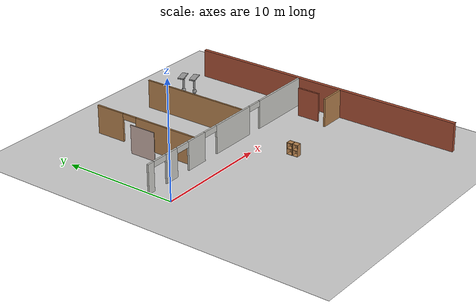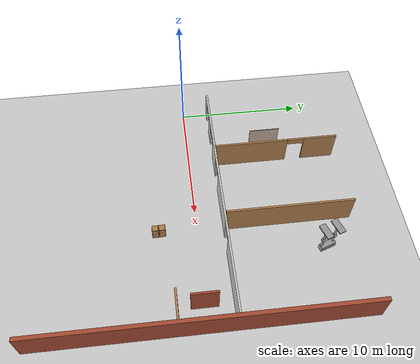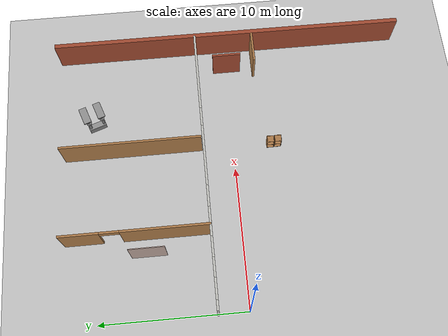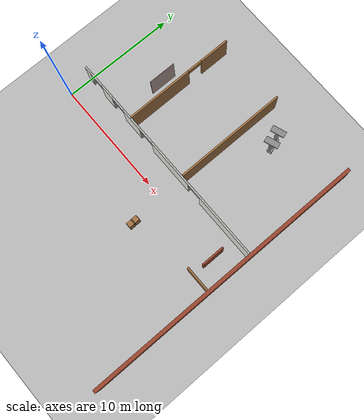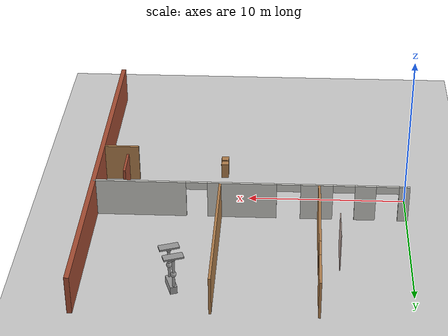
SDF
<sdf version="1.6">
 <world name="default">
  <model name="ground_plane">
   <static>1</static>
   <link name="link">
    <collision name="collision">
     <geometry><plane><normal>0 0 1</normal><size>100 100</size></plane></geometry>
     <surface><friction><ode><mu>100</mu><mu2>50</mu2></ode></friction></surface>
    </collision>
    <visual name="visual">
     <cast_shadows>0</cast_shadows>
     <geometry><plane><normal>0 0 1</normal><size>100 100</size></plane></geometry>
     <material>
      <script><uri>file://media/materials/scripts/gazebo.material</uri><name>Gazebo/Grey</name></script>
     </material>
    </visual>
   </link>
  </model>
  <model name="Building">
   <pose>-1.26631 -0.299272 0 0 -0 0</pose>
   <link name="Wall_19">
    <collision name="Wall_19_Collision">
     <geometry><box><size>24.9915 0.3 2.5</size></box></geometry>
     <pose>0 0 1.25 0 -0 0</pose>
    </collision>
    <visual name="Wall_19_Visual">
     <pose>0 0 1.25 0 -0 0</pose>
     <geometry><box><size>24.9915 0.3 2.5</size></box></geometry>
     <material>
      <script><uri>file://media/materials/scripts/gazebo.material</uri><name>Gazebo/Bricks</name></script>
      <ambient>1 1 1 1</ambient>
     </material>
     <meta><layer>0</layer></meta>
    </visual>
    <pose>20.9406 0.012499 0 0 0 -1.57201</pose>
   </link>
   <link name="Wall_77">
    <pose>11.0476 2.39664 0 0 -0 0</pose>
    <visual name="Wall_77_Visual_0">
     <pose>-9.53901 0 1.25 0 -0 0</pose>
     <geometry><box><size>0.671981 0.15 2.5</size></box></geometry>
     <material>
      <script><uri>file://media/materials/scripts/gazebo.material</uri><name>Gazebo/CeilingTiled</name></script>
      <ambient>0.921569 0.807843 0.615686 1</ambient>
     </material>
     <meta><layer>0</layer></meta>
    </visual>
    <collision name="Wall_77_Collision_0">
     <geometry><box><size>0.671981 0.15 2.5</size></box></geometry>
     <pose>-9.53901 0 1.25 0 -0 0</pose>
    </collision>
    <visual name="Wall_77_Visual_1">
     <pose>-7.12805 0 1.25 0 -0 0</pose>
     <geometry><box><size>1.31821 0.15 2.5</size></box></geometry>
     <material>
      <script><uri>file://media/materials/scripts/gazebo.material</uri><name>Gazebo/CeilingTiled</name></script>
      <ambient>0.921569 0.807843 0.615686 1</ambient>
     </material>
     <meta><layer>0</layer></meta>
    </visual>
    <collision name="Wall_77_Collision_1">
     <geometry><box><size>1.31821 0.15 2.5</size></box></geometry>
     <pose>-7.12805 0 1.25 0 -0 0</pose>
    </collision>
    <visual name="Wall_77_Visual_2">
     <pose>-4.09575 0 1.25 0 -0 0</pose>
     <geometry><box><size>2.01783 0.15 2.5</size></box></geometry>
     <material>
      <script><uri>file://media/materials/scripts/gazebo.material</uri><name>Gazebo/CeilingTiled</name></script>
      <ambient>0.921569 0.807843 0.615686 1</ambient>
     </material>
     <meta><layer>0</layer></meta>
    </visual>
    <collision name="Wall_77_Collision_2">
     <geometry><box><size>2.01783 0.15 2.5</size></box></geometry>
     <pose>-4.09575 0 1.25 0 -0 0</pose>
    </collision>
    <visual name="Wall_77_Visual_3">
     <pose>0.576423 0 1.25 0 -0 0</pose>
     <geometry><box><size>4.33726 0.15 2.5</size></box></geometry>
     <material>
      <script><uri>file://media/materials/scripts/gazebo.material</uri><name>Gazebo/CeilingTiled</name></script>
      <ambient>0.921569 0.807843 0.615686 1</ambient>
     </material>
     <meta><layer>0</layer></meta>
    </visual>
    <collision name="Wall_77_Collision_3">
     <geometry><box><size>4.33726 0.15 2.5</size></box></geometry>
     <pose>0.576423 0 1.25 0 -0 0</pose>
    </collision>
    <visual name="Wall_77_Visual_4">
     <pose>6.97729 0 1.25 0 -0 0</pose>
     <geometry><box><size>5.79542 0.15 2.5</size></box></geometry>
     <material>
      <script><uri>file://media/materials/scripts/gazebo.material</uri><name>Gazebo/CeilingTiled</name></script>
      <ambient>0.921569 0.807843 0.615686 1</ambient>
     </material>
     <meta><layer>0</layer></meta>
    </visual>
    <collision name="Wall_77_Collision_4">
     <geometry><box><size>5.79542 0.15 2.5</size></box></geometry>
     <pose>6.97729 0 1.25 0 -0 0</pose>
    </collision>
    <visual name="Wall_77_Visual_5">
     <pose>-8.49509 0 2.25 0 -0 0</pose>
     <geometry><box><size>1.41586 0.15 0.5</size></box></geometry>
     <material>
      <script><uri>file://media/materials/scripts/gazebo.material</uri><name>Gazebo/CeilingTiled</name></script>
      <ambient>0.921569 0.807843 0.615686 1</ambient>
     </material>
     <meta><layer>0</layer></meta>
    </visual>
    <collision name="Wall_77_Collision_5">
     <geometry><box><size>1.41586 0.15 0.5</size></box></geometry>
     <pose>-8.49509 0 2.25 0 -0 0</pose>
    </collision>
    <visual name="Wall_77_Visual_6">
     <pose>-5.7868 0 2.25 0 -0 0</pose>
     <geometry><box><size>1.36428 0.15 0.5</size></box></geometry>
     <material>
      <script><uri>file://media/materials/scripts/gazebo.material</uri><name>Gazebo/CeilingTiled</name></script>
      <ambient>0.921569 0.807843 0.615686 1</ambient>
     </material>
     <meta><layer>0</layer></meta>
    </visual>
    <collision name="Wall_77_Collision_6">
     <geometry><box><size>1.36428 0.15 0.5</size></box></geometry>
     <pose>-5.7868 0 2.25 0 -0 0</pose>
    </collision>
    <visual name="Wall_77_Visual_7">
     <pose>-2.33952 0 2.25 0 -0 0</pose>
     <geometry><box><size>1.49462 0.15 0.5</size></box></geometry>
     <material>
      <script><uri>file://media/materials/scripts/gazebo.material</uri><name>Gazebo/CeilingTiled</name></script>
      <ambient>0.921569 0.807843 0.615686 1</ambient>
     </material>
     <meta><layer>0</layer></meta>
    </visual>
    <collision name="Wall_77_Collision_7">
     <geometry><box><size>1.49462 0.15 0.5</size></box></geometry>
     <pose>-2.33952 0 2.25 0 -0 0</pose>
    </collision>
    <visual name="Wall_77_Visual_8">
     <pose>3.41232 0 2.25 0 -0 0</pose>
     <geometry><box><size>1.33453 0.15 0.5</size></box></geometry>
     <material>
      <script><uri>file://media/materials/scripts/gazebo.material</uri><name>Gazebo/CeilingTiled</name></script>
      <ambient>0.921569 0.807843 0.615686 1</ambient>
     </material>
     <meta><layer>0</layer></meta>
    </visual>
    <collision name="Wall_77_Collision_8">
     <geometry><box><size>1.33453 0.15 0.5</size></box></geometry>
     <pose>3.41232 0 2.25 0 -0 0</pose>
    </collision>
   </link>
   <link name="Wall_80">
    <pose>6.79105 7.35843 0 0 0 -1.5708</pose>
    <visual name="Wall_80_Visual_0">
     <pose>-3.66248 0 1.25 0 -0 0</pose>
     <geometry><box><size>2.67504 0.15 2.5</size></box></geometry>
     <material>
      <script><uri>file://media/materials/scripts/gazebo.material</uri><name>Gazebo/Wood</name></script>
      <ambient>1 1 1 1</ambient>
     </material>
     <meta><layer>0</layer></meta>
    </visual>
    <collision name="Wall_80_Collision_0">
     <geometry><box><size>2.67504 0.15 2.5</size></box></geometry>
     <pose>-3.66248 0 1.25 0 -0 0</pose>
    </collision>
    <visual name="Wall_80_Visual_1">
     <pose>2.00479 0 1.25 0 -0 0</pose>
     <geometry><box><size>5.99042 0.15 2.5</size></box></geometry>
     <material>
      <script><uri>file://media/materials/scripts/gazebo.material</uri><name>Gazebo/Wood</name></script>
      <ambient>1 1 1 1</ambient>
     </material>
     <meta><layer>0</layer></meta>
    </visual>
    <collision name="Wall_80_Collision_1">
     <geometry><box><size>5.99042 0.15 2.5</size></box></geometry>
     <pose>2.00479 0 1.25 0 -0 0</pose>
    </collision>
    <visual name="Wall_80_Visual_2">
     <pose>-1.65769 0 2.25 0 -0 0</pose>
     <geometry><box><size>1.33453 0.15 0.5</size></box></geometry>
     <material>
      <script><uri>file://media/materials/scripts/gazebo.material</uri><name>Gazebo/Wood</name></script>
      <ambient>1 1 1 1</ambient>
     </material>
     <meta><layer>0</layer></meta>
    </visual>
    <collision name="Wall_80_Collision_2">
     <geometry><box><size>1.33453 0.15 0.5</size></box></geometry>
     <pose>-1.65769 0 2.25 0 -0 0</pose>
    </collision>
   </link>
   <link name="Wall_91">
    <collision name="Wall_91_Collision">
     <geometry><box><size>2.25 0.15 2.5</size></box></geometry>
     <pose>0 0 1.25 0 -0 0</pose>
    </collision>
    <visual name="Wall_91_Visual">
     <pose>0 0 1.25 0 -0 0</pose>
     <geometry><box><size>2.25 0.15 2.5</size></box></geometry>
     <material>
      <script><uri>file://media/materials/scripts/gazebo.material</uri><name>Gazebo/Wood</name></script>
      <ambient>1 1 1 1</ambient>
     </material>
     <meta><layer>0</layer></meta>
    </visual>
    <pose>19.6906 -1.7315 0 0 -0 0</pose>
   </link>
   <link name="Wall_93">
    <collision name="Wall_93_Collision">
     <geometry><box><size>2 0.15 2.5</size></box></geometry>
     <pose>0 0 1.25 0 -0 0</pose>
    </collision>
    <visual name="Wall_93_Visual">
     <pose>0 0 1.25 0 -0 0</pose>
     <geometry><box><size>2 0.15 2.5</size></box></geometry>
     <material>
      <script><uri>file://media/materials/scripts/gazebo.material</uri><name>Gazebo/Bricks</name></script>
      <ambient>1 1 1 1</ambient>
     </material>
     <meta><layer>0</layer></meta>
    </visual>
    <pose>19.1519 0.230697 0 0 0 -1.5708</pose>
   </link>
   <link name="Wall_95">
    <collision name="Wall_95_Collision">
     <geometry><box><size>9.75 0.15 2.5</size></box></geometry>
     <pose>0 0 1.25 0 -0 0</pose>
    </collision>
    <visual name="Wall_95_Visual">
     <pose>0 0 1.25 0 -0 0</pose>
     <geometry><box><size>9.75 0.15 2.5</size></box></geometry>
     <material>
      <script><uri>file://media/materials/scripts/gazebo.material</uri><name>Gazebo/Wood</name></script>
      <ambient>1 1 1 1</ambient>
     </material>
     <meta><layer>0</layer></meta>
    </visual>
    <pose>12.9865 7.39321 0 0 0 -1.5708</pose>
   </link>
   <link name="Wall_97">
    <collision name="Wall_97_Collision">
     <geometry><box><size>2.39986 0.05 2.5</size></box></geometry>
     <pose>0 0 1.25 0 -0 0</pose>
    </collision>
    <visual name="Wall_97_Visual">
     <pose>0 0 1.25 0 -0 0</pose>
     <geometry><box><size>2.39986 0.05 2.5</size></box></geometry>
     <material>
      <script><uri>file://media/materials/scripts/gazebo.material</uri><name>Gazebo/Grey</name></script>
      <ambient>0.760784 0.662745 0.627451 1</ambient>
     </material>
     <meta><layer>0</layer></meta>
    </visual>
    <pose>5.54862 6.64876 0 0 0 -1.5708</pose>
   </link>
   <static>1</static>
  </model>
  <model name="cabinet_clone_11">
   <static>1</static>
   <link name="cabinet_bottom_plate">
    <inertial>
     <pose>0 0 -1 0 -0 0</pose>
     <inertia><ixx>2.05</ixx><ixy>0</ixy><ixz>0</ixz><iyy>2.05</iyy><iyz>0</iyz><izz>2.05</izz></inertia>
     <mass>25</mass>
    </inertial>
    <collision name="cabinet_bottom_plate_geom">
     <pose>0 0 0.01 0 -0 0</pose>
     <geometry><box><size>0.45 0.45 0.02</size></box></geometry>
    </collision>
    <visual name="cabinet_bottom_plate_geom_visual">
     <pose>0 0 0.01 0 -0 0</pose>
     <geometry><box><size>0.45 0.45 0.02</size></box></geometry>
     <material>
      <script><uri>file://media/materials/scripts/gazebo.material</uri><name>Gazebo/Wood</name></script>
     </material>
    </visual>
    <collision name="cabinet_bottom_plate_geom_cabinet_back_plate">
     <pose>0.235 0 0.51 0 -0 0</pose>
     <geometry><box><size>0.02 0.45 1.02</size></box></geometry>
    </collision>
    <visual name="cabinet_bottom_plate_geom_cabinet_back_plate_visual">
     <pose>0.235 0 0.51 0 -0 0</pose>
     <geometry><box><size>0.02 0.45 1.02</size></box></geometry>
     <material>
      <script><uri>file://media/materials/scripts/gazebo.material</uri><name>Gazebo/Wood</name></script>
     </material>
    </visual>
    <collision name="cabinet_bottom_plate_geom_cabinet_left_plate">
     <pose>0 0.235 0.51 0 -0 0</pose>
     <geometry><box><size>0.45 0.02 1.02</size></box></geometry>
    </collision>
    <visual name="cabinet_bottom_plate_geom_cabinet_left_plate_visual">
     <pose>0 0.235 0.51 0 -0 0</pose>
     <geometry><box><size>0.45 0.02 1.02</size></box></geometry>
     <material>
      <script><uri>file://media/materials/scripts/gazebo.material</uri><name>Gazebo/Wood</name></script>
     </material>
    </visual>
    <collision name="cabinet_bottom_plate_geom_cabinet_middle_plate">
     <pose>0 0 0.51 0 -0 0</pose>
     <geometry><box><size>0.45 0.45 0.02</size></box></geometry>
    </collision>
    <visual name="cabinet_bottom_plate_geom_cabinet_middle_plate_visual">
     <pose>0 0 0.51 0 -0 0</pose>
     <geometry><box><size>0.45 0.45 0.02</size></box></geometry>
     <material>
      <script><uri>file://media/materials/scripts/gazebo.material</uri><name>Gazebo/Wood</name></script>
     </material>
    </visual>
    <collision name="cabinet_bottom_plate_geom_cabinet_right_plate">
     <pose>0 -0.235 0.51 0 -0 0</pose>
     <geometry><box><size>0.45 0.02 1.02</size></box></geometry>
    </collision>
    <visual name="cabinet_bottom_plate_geom_cabinet_right_plate_visual">
     <pose>0 -0.235 0.51 0 -0 0</pose>
     <geometry><box><size>0.45 0.02 1.02</size></box></geometry>
     <material>
      <script><uri>file://media/materials/scripts/gazebo.material</uri><name>Gazebo/Wood</name></script>
     </material>
    </visual>
    <collision name="cabinet_bottom_plate_geom_cabinet_top_plate">
     <pose>0 0 1.01 0 -0 0</pose>
     <geometry><box><size>0.45 0.45 0.02</size></box></geometry>
    </collision>
    <visual name="cabinet_bottom_plate_geom_cabinet_top_plate_visual">
     <pose>0 0 1.01 0 -0 0</pose>
     <geometry><box><size>0.45 0.45 0.02</size></box></geometry>
     <material>
      <script><uri>file://media/materials/scripts/gazebo.material</uri><name>Gazebo/Wood</name></script>
     </material>
    </visual>
   </link>
   <pose>11.6996 -3.17062 0 0 -0 0</pose>
  </model>
  <model name="cabinet_clone_12">
   <static>1</static>
   <link name="cabinet_bottom_plate">
    <inertial>
     <pose>0 0 -1 0 -0 0</pose>
     <inertia><ixx>2.05</ixx><ixy>0</ixy><ixz>0</ixz><iyy>2.05</iyy><iyz>0</iyz><izz>2.05</izz></inertia>
     <mass>25</mass>
    </inertial>
    <collision name="cabinet_bottom_plate_geom">
     <pose>0 0 0.01 0 -0 0</pose>
     <geometry><box><size>0.45 0.45 0.02</size></box></geometry>
    </collision>
    <visual name="cabinet_bottom_plate_geom_visual">
     <pose>0 0 0.01 0 -0 0</pose>
     <geometry><box><size>0.45 0.45 0.02</size></box></geometry>
     <material>
      <script><uri>file://media/materials/scripts/gazebo.material</uri><name>Gazebo/Wood</name></script>
     </material>
    </visual>
    <collision name="cabinet_bottom_plate_geom_cabinet_back_plate">
     <pose>0.235 0 0.51 0 -0 0</pose>
     <geometry><box><size>0.02 0.45 1.02</size></box></geometry>
    </collision>
    <visual name="cabinet_bottom_plate_geom_cabinet_back_plate_visual">
     <pose>0.235 0 0.51 0 -0 0</pose>
     <geometry><box><size>0.02 0.45 1.02</size></box></geometry>
     <material>
      <script><uri>file://media/materials/scripts/gazebo.material</uri><name>Gazebo/Wood</name></script>
     </material>
    </visual>
    <collision name="cabinet_bottom_plate_geom_cabinet_left_plate">
     <pose>0 0.235 0.51 0 -0 0</pose>
     <geometry><box><size>0.45 0.02 1.02</size></box></geometry>
    </collision>
    <visual name="cabinet_bottom_plate_geom_cabinet_left_plate_visual">
     <pose>0 0.235 0.51 0 -0 0</pose>
     <geometry><box><size>0.45 0.02 1.02</size></box></geometry>
     <material>
      <script><uri>file://media/materials/scripts/gazebo.material</uri><name>Gazebo/Wood</name></script>
     </material>
    </visual>
    <collision name="cabinet_bottom_plate_geom_cabinet_middle_plate">
     <pose>0 0 0.51 0 -0 0</pose>
     <geometry><box><size>0.45 0.45 0.02</size></box></geometry>
    </collision>
    <visual name="cabinet_bottom_plate_geom_cabinet_middle_plate_visual">
     <pose>0 0 0.51 0 -0 0</pose>
     <geometry><box><size>0.45 0.45 0.02</size></box></geometry>
     <material>
      <script><uri>file://media/materials/scripts/gazebo.material</uri><name>Gazebo/Wood</name></script>
     </material>
    </visual>
    <collision name="cabinet_bottom_plate_geom_cabinet_right_plate">
     <pose>0 -0.235 0.51 0 -0 0</pose>
     <geometry><box><size>0.45 0.02 1.02</size></box></geometry>
    </collision>
    <visual name="cabinet_bottom_plate_geom_cabinet_right_plate_visual">
     <pose>0 -0.235 0.51 0 -0 0</pose>
     <geometry><box><size>0.45 0.02 1.02</size></box></geometry>
     <material>
      <script><uri>file://media/materials/scripts/gazebo.material</uri><name>Gazebo/Wood</name></script>
     </material>
    </visual>
    <collision name="cabinet_bottom_plate_geom_cabinet_top_plate">
     <pose>0 0 1.01 0 -0 0</pose>
     <geometry><box><size>0.45 0.45 0.02</size></box></geometry>
    </collision>
    <visual name="cabinet_bottom_plate_geom_cabinet_top_plate_visual">
     <pose>0 0 1.01 0 -0 0</pose>
     <geometry><box><size>0.45 0.45 0.02</size></box></geometry>
     <material>
      <script><uri>file://media/materials/scripts/gazebo.material</uri><name>Gazebo/Wood</name></script>
     </material>
    </visual>
   </link>
   <pose>11.6866 -2.64405 0 0 -0 0</pose>
  </model>
  <model name="Humanoid2_1">
   <link name="link_0">
    <pose>5.79772 -1.97955 0.05 0 -0 0</pose>
    <inertial>
     <mass>0.06046</mass>
     <inertia>
      <ixx>0.00720686</ixx>
      <ixy>0</ixy>
      <ixz>0</ixz>
      <iyy>0.00137814</iyy>
      <iyz>0</iyz>
      <izz>0.00848671</izz>
     </inertia>
    </inertial>
    <visual name="visual">
     <geometry><box><size>0.513593 1.19191 0.098763</size></box></geometry>
     <material>
      <lighting>1</lighting>
      <script><uri>file://media/materials/scripts/gazebo.material</uri><name>Gazebo/Grey</name></script>
      <shader type="pixel"><normal_map>__default__</normal_map></shader>
      <ambient>0.3 0.3 0.3 1</ambient>
      <diffuse>0.7 0.7 0.7 1</diffuse>
      <specular>0.01 0.01 0.01 1</specular>
      <emissive>0 0 0 1</emissive>
     </material>
    </visual>
    <collision name="collision">
     <geometry><box><size>0.513593 1.19191 0.098763</size></box></geometry>
     <surface>
      <friction>
       <ode><mu>1</mu><mu2>1</mu2><fdir1>0 0 0</fdir1><slip1>0</slip1><slip2>0</slip2></ode>
       <torsional>
        <coefficient>1</coefficient>
        <patch_radius>0</patch_radius>
        <surface_radius>0</surface_radius>
        <use_patch_radius>1</use_patch_radius>
        <ode><slip>0</slip></ode>
       </torsional>
      </friction>
      <bounce><restitution_coefficient>0</restitution_coefficient><threshold>1e+06</threshold></bounce>
      <contact>
       <collide_without_contact>0</collide_without_contact>
       <collide_without_contact_bitmask>1</collide_without_contact_bitmask>
       <collide_bitmask>1</collide_bitmask>
       <ode>
        <soft_cfm>0</soft_cfm>
        <soft_erp>0.2</soft_erp>
        <kp>1e+13</kp>
        <kd>1</kd>
        <max_vel>0.01</max_vel>
        <min_depth>0</min_depth>
       </ode>
       <bullet>
        <split_impulse>1</split_impulse>
        <split_impulse_penetration_threshold>-0.01</split_impulse_penetration_threshold>
        <soft_cfm>0</soft_cfm>
        <soft_erp>0.2</soft_erp>
        <kp>1e+13</kp>
        <kd>1</kd>
       </bullet>
      </contact>
     </surface>
    </collision>
   </link>
   <link name="link_0_clone">
    <pose>4.78369 -1.98069 0.05 0 -0 0</pose>
    <inertial>
     <mass>0.06046</mass>
     <inertia>
      <ixx>0.00720686</ixx>
      <ixy>0</ixy>
      <ixz>0</ixz>
      <iyy>0.00137814</iyy>
      <iyz>0</iyz>
      <izz>0.00848671</izz>
     </inertia>
    </inertial>
    <visual name="visual">
     <geometry><box><size>0.513593 1.19191 0.098763</size></box></geometry>
     <material>
      <lighting>1</lighting>
      <script><uri>file://media/materials/scripts/gazebo.material</uri><name>Gazebo/Grey</name></script>
      <shader type="pixel"><normal_map>__default__</normal_map></shader>
      <ambient>0.3 0.3 0.3 1</ambient>
      <diffuse>0.7 0.7 0.7 1</diffuse>
      <specular>0.01 0.01 0.01 1</specular>
      <emissive>0 0 0 1</emissive>
     </material>
    </visual>
    <collision name="collision">
     <geometry><box><size>0.513593 1.19191 0.098763</size></box></geometry>
     <surface>
      <friction>
       <ode><mu>1</mu><mu2>1</mu2><fdir1>0 0 0</fdir1><slip1>0</slip1><slip2>0</slip2></ode>
       <torsional>
        <coefficient>1</coefficient>
        <patch_radius>0</patch_radius>
        <surface_radius>0</surface_radius>
        <use_patch_radius>1</use_patch_radius>
        <ode><slip>0</slip></ode>
       </torsional>
      </friction>
      <bounce><restitution_coefficient>0</restitution_coefficient><threshold>1e+06</threshold></bounce>
      <contact>
       <collide_without_contact>0</collide_without_contact>
       <collide_without_contact_bitmask>1</collide_without_contact_bitmask>
       <collide_bitmask>1</collide_bitmask>
       <ode>
        <soft_cfm>0</soft_cfm>
        <soft_erp>0.2</soft_erp>
        <kp>1e+13</kp>
        <kd>1</kd>
        <max_vel>0.01</max_vel>
        <min_depth>0</min_depth>
       </ode>
       <bullet>
        <split_impulse>1</split_impulse>
        <split_impulse_penetration_threshold>-0.01</split_impulse_penetration_threshold>
        <soft_cfm>0</soft_cfm>
        <soft_erp>0.2</soft_erp>
        <kp>1e+13</kp>
        <kd>1</kd>
       </bullet>
      </contact>
     </surface>
    </collision>
   </link>
   <link name="link_1">
    <pose>5.78776 -1.98521 0.184527 0 -0 0</pose>
    <inertial>
     <mass>0.0436597</mass>
     <inertia>
      <ixx>0.000541334</ixx>
      <ixy>0</ixy>
      <ixz>0</ixz>
      <iyy>0.000541334</iyy>
      <iyz>0</iyz>
      <izz>0.000541334</izz>
     </inertia>
    </inertial>
    <visual name="visual">
     <geometry><sphere><radius>0.176061</radius></sphere></geometry>
     <material>
      <lighting>1</lighting>
      <script><uri>file://media/materials/scripts/gazebo.material</uri><name>Gazebo/Grey</name></script>
      <shader type="pixel"/>
      <ambient>0.3 0.3 0.3 1</ambient>
      <diffuse>0.7 0.7 0.7 1</diffuse>
      <specular>0.01 0.01 0.01 1</specular>
      <emissive>0 0 0 1</emissive>
     </material>
    </visual>
    <collision name="collision">
     <geometry><sphere><radius>0.176061</radius></sphere></geometry>
     <surface>
      <friction>
       <ode><mu>1</mu><mu2>1</mu2><fdir1>0 0 0</fdir1><slip1>0</slip1><slip2>0</slip2></ode>
       <torsional>
        <coefficient>1</coefficient>
        <patch_radius>0</patch_radius>
        <surface_radius>0</surface_radius>
        <use_patch_radius>1</use_patch_radius>
        <ode><slip>0</slip></ode>
       </torsional>
      </friction>
      <bounce><restitution_coefficient>0</restitution_coefficient><threshold>1e+06</threshold></bounce>
      <contact>
       <collide_without_contact>0</collide_without_contact>
       <collide_without_contact_bitmask>1</collide_without_contact_bitmask>
       <collide_bitmask>1</collide_bitmask>
       <ode>
        <soft_cfm>0</soft_cfm>
        <soft_erp>0.2</soft_erp>
        <kp>1e+13</kp>
        <kd>1</kd>
        <max_vel>0.01</max_vel>
        <min_depth>0</min_depth>
       </ode>
       <bullet>
        <split_impulse>1</split_impulse>
        <split_impulse_penetration_threshold>-0.01</split_impulse_penetration_threshold>
        <soft_cfm>0</soft_cfm>
        <soft_erp>0.2</soft_erp>
        <kp>1e+13</kp>
        <kd>1</kd>
       </bullet>
      </contact>
     </surface>
    </collision>
   </link>
   <link name="link_1_clone">
    <pose>5.78609 -1.99189 1.31349 0 -0 0</pose>
    <inertial>
     <mass>0.0436597</mass>
     <inertia>
      <ixx>0.000541334</ixx>
      <ixy>0</ixy>
      <ixz>0</ixz>
      <iyy>0.000541334</iyy>
      <iyz>0</iyz>
      <izz>0.000541334</izz>
     </inertia>
    </inertial>
    <visual name="visual">
     <geometry><sphere><radius>0.176061</radius></sphere></geometry>
     <material>
      <lighting>1</lighting>
      <script><uri>file://media/materials/scripts/gazebo.material</uri><name>Gazebo/Grey</name></script>
      <shader type="pixel"/>
      <ambient>0.3 0.3 0.3 1</ambient>
      <diffuse>0.7 0.7 0.7 1</diffuse>
      <specular>0.01 0.01 0.01 1</specular>
      <emissive>0 0 0 1</emissive>
     </material>
    </visual>
    <collision name="collision">
     <geometry><sphere><radius>0.176061</radius></sphere></geometry>
     <surface>
      <friction>
       <ode><mu>1</mu><mu2>1</mu2><fdir1>0 0 0</fdir1><slip1>0</slip1><slip2>0</slip2></ode>
       <torsional>
        <coefficient>1</coefficient>
        <patch_radius>0</patch_radius>
        <surface_radius>0</surface_radius>
        <use_patch_radius>1</use_patch_radius>
        <ode><slip>0</slip></ode>
       </torsional>
      </friction>
      <bounce><restitution_coefficient>0</restitution_coefficient><threshold>1e+06</threshold></bounce>
      <contact>
       <collide_without_contact>0</collide_without_contact>
       <collide_without_contact_bitmask>1</collide_without_contact_bitmask>
       <collide_bitmask>1</collide_bitmask>
       <ode>
        <soft_cfm>0</soft_cfm>
        <soft_erp>0.2</soft_erp>
        <kp>1e+13</kp>
        <kd>1</kd>
        <max_vel>0.01</max_vel>
        <min_depth>0</min_depth>
       </ode>
       <bullet>
        <split_impulse>1</split_impulse>
        <split_impulse_penetration_threshold>-0.01</split_impulse_penetration_threshold>
        <soft_cfm>0</soft_cfm>
        <soft_erp>0.2</soft_erp>
        <kp>1e+13</kp>
        <kd>1</kd>
       </bullet>
      </contact>
     </surface>
    </collision>
   </link>
   <link name="link_1_clone_0">
    <pose>4.81912 -1.97367 0.184527 0 -0 0</pose>
    <inertial>
     <mass>0.0436597</mass>
     <inertia>
      <ixx>0.000541334</ixx>
      <ixy>0</ixy>
      <ixz>0</ixz>
      <iyy>0.000541334</iyy>
      <iyz>0</iyz>
      <izz>0.000541334</izz>
     </inertia>
    </inertial>
    <visual name="visual">
     <geometry><sphere><radius>0.176061</radius></sphere></geometry>
     <material>
      <lighting>1</lighting>
      <script><uri>file://media/materials/scripts/gazebo.material</uri><name>Gazebo/Grey</name></script>
      <shader type="pixel"/>
      <ambient>0.3 0.3 0.3 1</ambient>
      <diffuse>0.7 0.7 0.7 1</diffuse>
      <specular>0.01 0.01 0.01 1</specular>
      <emissive>0 0 0 1</emissive>
     </material>
    </visual>
    <collision name="collision">
     <geometry><sphere><radius>0.176061</radius></sphere></geometry>
     <surface>
      <friction>
       <ode><mu>1</mu><mu2>1</mu2><fdir1>0 0 0</fdir1><slip1>0</slip1><slip2>0</slip2></ode>
       <torsional>
        <coefficient>1</coefficient>
        <patch_radius>0</patch_radius>
        <surface_radius>0</surface_radius>
        <use_patch_radius>1</use_patch_radius>
        <ode><slip>0</slip></ode>
       </torsional>
      </friction>
      <bounce><restitution_coefficient>0</restitution_coefficient><threshold>1e+06</threshold></bounce>
      <contact>
       <collide_without_contact>0</collide_without_contact>
       <collide_without_contact_bitmask>1</collide_without_contact_bitmask>
       <collide_bitmask>1</collide_bitmask>
       <ode>
        <soft_cfm>0</soft_cfm>
        <soft_erp>0.2</soft_erp>
        <kp>1e+13</kp>
        <kd>1</kd>
        <max_vel>0.01</max_vel>
        <min_depth>0</min_depth>
       </ode>
       <bullet>
        <split_impulse>1</split_impulse>
        <split_impulse_penetration_threshold>-0.01</split_impulse_penetration_threshold>
        <soft_cfm>0</soft_cfm>
        <soft_erp>0.2</soft_erp>
        <kp>1e+13</kp>
        <kd>1</kd>
       </bullet>
      </contact>
     </surface>
    </collision>
   </link>
   <link name="link_1_clone_clone_0">
    <pose>4.82981 -1.98574 1.31349 0 -0 0</pose>
    <inertial>
     <mass>0.0436597</mass>
     <inertia>
      <ixx>0.000541334</ixx>
      <ixy>0</ixy>
      <ixz>0</ixz>
      <iyy>0.000541334</iyy>
      <iyz>0</iyz>
      <izz>0.000541334</izz>
     </inertia>
    </inertial>
    <visual name="visual">
     <geometry><sphere><radius>0.176061</radius></sphere></geometry>
     <material>
      <lighting>1</lighting>
      <script><uri>file://media/materials/scripts/gazebo.material</uri><name>Gazebo/Grey</name></script>
      <shader type="pixel"/>
      <ambient>0.3 0.3 0.3 1</ambient>
      <diffuse>0.7 0.7 0.7 1</diffuse>
      <specular>0.01 0.01 0.01 1</specular>
      <emissive>0 0 0 1</emissive>
     </material>
    </visual>
    <collision name="collision">
     <geometry><sphere><radius>0.176061</radius></sphere></geometry>
     <surface>
      <friction>
       <ode><mu>1</mu><mu2>1</mu2><fdir1>0 0 0</fdir1><slip1>0</slip1><slip2>0</slip2></ode>
       <torsional>
        <coefficient>1</coefficient>
        <patch_radius>0</patch_radius>
        <surface_radius>0</surface_radius>
        <use_patch_radius>1</use_patch_radius>
        <ode><slip>0</slip></ode>
       </torsional>
      </friction>
      <bounce><restitution_coefficient>0</restitution_coefficient><threshold>1e+06</threshold></bounce>
      <contact>
       <collide_without_contact>0</collide_without_contact>
       <collide_without_contact_bitmask>1</collide_without_contact_bitmask>
       <collide_bitmask>1</collide_bitmask>
       <ode>
        <soft_cfm>0</soft_cfm>
        <soft_erp>0.2</soft_erp>
        <kp>1e+13</kp>
        <kd>1</kd>
        <max_vel>0.01</max_vel>
        <min_depth>0</min_depth>
       </ode>
       <bullet>
        <split_impulse>1</split_impulse>
        <split_impulse_penetration_threshold>-0.01</split_impulse_penetration_threshold>
        <soft_cfm>0</soft_cfm>
        <soft_erp>0.2</soft_erp>
        <kp>1e+13</kp>
        <kd>1</kd>
       </bullet>
      </contact>
     </surface>
    </collision>
   </link>
   <link name="link_2">
    <pose>5.78656 -1.98911 0.758077 0 -0 0</pose>
    <inertial>
     <mass>0.0281952</mass>
     <inertia>
      <ixx>0.00239929</ixx>
      <ixy>0</ixy>
      <ixz>0</ixz>
      <iyy>0.00239929</iyy>
      <iyz>0</iyz>
      <izz>9.93738e-05</izz>
     </inertia>
    </inertial>
    <visual name="visual">
     <geometry><cylinder><radius>0.0839582</radius><length>1</length></cylinder></geometry>
     <material>
      <lighting>1</lighting>
      <script><uri>file://media/materials/scripts/gazebo.material</uri><name>Gazebo/Grey</name></script>
      <shader type="pixel"/>
      <ambient>0.3 0.3 0.3 1</ambient>
      <diffuse>0.7 0.7 0.7 1</diffuse>
      <specular>0.01 0.01 0.01 1</specular>
      <emissive>0 0 0 1</emissive>
     </material>
    </visual>
    <collision name="collision">
     <geometry><cylinder><radius>0.083958</radius><length>1</length></cylinder></geometry>
     <surface>
      <friction>
       <ode><mu>1</mu><mu2>1</mu2><fdir1>0 0 0</fdir1><slip1>0</slip1><slip2>0</slip2></ode>
       <torsional>
        <coefficient>1</coefficient>
        <patch_radius>0</patch_radius>
        <surface_radius>0</surface_radius>
        <use_patch_radius>1</use_patch_radius>
        <ode><slip>0</slip></ode>
       </torsional>
      </friction>
      <bounce><restitution_coefficient>0</restitution_coefficient><threshold>1e+06</threshold></bounce>
      <contact>
       <collide_without_contact>0</collide_without_contact>
       <collide_without_contact_bitmask>1</collide_without_contact_bitmask>
       <collide_bitmask>1</collide_bitmask>
       <ode>
        <soft_cfm>0</soft_cfm>
        <soft_erp>0.2</soft_erp>
        <kp>1e+13</kp>
        <kd>1</kd>
        <max_vel>0.01</max_vel>
        <min_depth>0</min_depth>
       </ode>
       <bullet>
        <split_impulse>1</split_impulse>
        <split_impulse_penetration_threshold>-0.01</split_impulse_penetration_threshold>
        <soft_cfm>0</soft_cfm>
        <soft_erp>0.2</soft_erp>
        <kp>1e+13</kp>
        <kd>1</kd>
       </bullet>
      </contact>
     </surface>
    </collision>
   </link>
   <link name="link_2_clone">
    <pose>5.79309 -1.99682 1.88288 0 -0 0</pose>
    <inertial>
     <mass>0.0281952</mass>
     <inertia>
      <ixx>0.00239929</ixx>
      <ixy>0</ixy>
      <ixz>0</ixz>
      <iyy>0.00239929</iyy>
      <iyz>0</iyz>
      <izz>9.93738e-05</izz>
     </inertia>
    </inertial>
    <visual name="visual">
     <geometry><cylinder><radius>0.0839582</radius><length>1</length></cylinder></geometry>
     <material>
      <lighting>1</lighting>
      <script><uri>file://media/materials/scripts/gazebo.material</uri><name>Gazebo/Grey</name></script>
      <shader type="pixel"/>
      <ambient>0.3 0.3 0.3 1</ambient>
      <diffuse>0.7 0.7 0.7 1</diffuse>
      <specular>0.01 0.01 0.01 1</specular>
      <emissive>0 0 0 1</emissive>
     </material>
    </visual>
    <collision name="collision">
     <geometry><cylinder><radius>0.083958</radius><length>1</length></cylinder></geometry>
     <surface>
      <friction>
       <ode><mu>1</mu><mu2>1</mu2><fdir1>0 0 0</fdir1><slip1>0</slip1><slip2>0</slip2></ode>
       <torsional>
        <coefficient>1</coefficient>
        <patch_radius>0</patch_radius>
        <surface_radius>0</surface_radius>
        <use_patch_radius>1</use_patch_radius>
        <ode><slip>0</slip></ode>
       </torsional>
      </friction>
      <bounce><restitution_coefficient>0</restitution_coefficient><threshold>1e+06</threshold></bounce>
      <contact>
       <collide_without_contact>0</collide_without_contact>
       <collide_without_contact_bitmask>1</collide_without_contact_bitmask>
       <collide_bitmask>1</collide_bitmask>
       <ode>
        <soft_cfm>0</soft_cfm>
        <soft_erp>0.2</soft_erp>
        <kp>1e+13</kp>
        <kd>1</kd>
        <max_vel>0.01</max_vel>
        <min_depth>0</min_depth>
       </ode>
       <bullet>
        <split_impulse>1</split_impulse>
        <split_impulse_penetration_threshold>-0.01</split_impulse_penetration_threshold>
        <soft_cfm>0</soft_cfm>
        <soft_erp>0.2</soft_erp>
        <kp>1e+13</kp>
        <kd>1</kd>
       </bullet>
      </contact>
     </surface>
    </collision>
   </link>
   <link name="link_2_clone_0">
    <pose>4.82328 -1.96972 0.758077 0 -0 0</pose>
    <inertial>
     <mass>0.0281952</mass>
     <inertia>
      <ixx>0.00239929</ixx>
      <ixy>0</ixy>
      <ixz>0</ixz>
      <iyy>0.00239929</iyy>
      <iyz>0</iyz>
      <izz>9.93738e-05</izz>
     </inertia>
    </inertial>
    <visual name="visual">
     <geometry><cylinder><radius>0.0839582</radius><length>1</length></cylinder></geometry>
     <material>
      <lighting>1</lighting>
      <script><uri>file://media/materials/scripts/gazebo.material</uri><name>Gazebo/Grey</name></script>
      <shader type="pixel"/>
      <ambient>0.3 0.3 0.3 1</ambient>
      <diffuse>0.7 0.7 0.7 1</diffuse>
      <specular>0.01 0.01 0.01 1</specular>
      <emissive>0 0 0 1</emissive>
     </material>
    </visual>
    <collision name="collision">
     <geometry><cylinder><radius>0.083958</radius><length>1</length></cylinder></geometry>
     <surface>
      <friction>
       <ode><mu>1</mu><mu2>1</mu2><fdir1>0 0 0</fdir1><slip1>0</slip1><slip2>0</slip2></ode>
       <torsional>
        <coefficient>1</coefficient>
        <patch_radius>0</patch_radius>
        <surface_radius>0</surface_radius>
        <use_patch_radius>1</use_patch_radius>
        <ode><slip>0</slip></ode>
       </torsional>
      </friction>
      <bounce><restitution_coefficient>0</restitution_coefficient><threshold>1e+06</threshold></bounce>
      <contact>
       <collide_without_contact>0</collide_without_contact>
       <collide_without_contact_bitmask>1</collide_without_contact_bitmask>
       <collide_bitmask>1</collide_bitmask>
       <ode>
        <soft_cfm>0</soft_cfm>
        <soft_erp>0.2</soft_erp>
        <kp>1e+13</kp>
        <kd>1</kd>
        <max_vel>0.01</max_vel>
        <min_depth>0</min_depth>
       </ode>
       <bullet>
        <split_impulse>1</split_impulse>
        <split_impulse_penetration_threshold>-0.01</split_impulse_penetration_threshold>
        <soft_cfm>0</soft_cfm>
        <soft_erp>0.2</soft_erp>
        <kp>1e+13</kp>
        <kd>1</kd>
       </bullet>
      </contact>
     </surface>
    </collision>
   </link>
   <link name="link_2_clone_clone">
    <pose>4.82782 -1.98664 1.88288 0 -0 0</pose>
    <inertial>
     <mass>0.0281952</mass>
     <inertia>
      <ixx>0.00239929</ixx>
      <ixy>0</ixy>
      <ixz>0</ixz>
      <iyy>0.00239929</iyy>
      <iyz>0</iyz>
      <izz>9.93738e-05</izz>
     </inertia>
    </inertial>
    <visual name="visual">
     <geometry><cylinder><radius>0.0839582</radius><length>1</length></cylinder></geometry>
     <material>
      <lighting>1</lighting>
      <script><uri>file://media/materials/scripts/gazebo.material</uri><name>Gazebo/Grey</name></script>
      <shader type="pixel"/>
      <ambient>0.3 0.3 0.3 1</ambient>
      <diffuse>0.7 0.7 0.7 1</diffuse>
      <specular>0.01 0.01 0.01 1</specular>
      <emissive>0 0 0 1</emissive>
     </material>
    </visual>
    <collision name="collision">
     <geometry><cylinder><radius>0.083958</radius><length>1</length></cylinder></geometry>
     <surface>
      <friction>
       <ode><mu>1</mu><mu2>1</mu2><fdir1>0 0 0</fdir1><slip1>0</slip1><slip2>0</slip2></ode>
       <torsional>
        <coefficient>1</coefficient>
        <patch_radius>0</patch_radius>
        <surface_radius>0</surface_radius>
        <use_patch_radius>1</use_patch_radius>
        <ode><slip>0</slip></ode>
       </torsional>
      </friction>
      <bounce><restitution_coefficient>0</restitution_coefficient><threshold>1e+06</threshold></bounce>
      <contact>
       <collide_without_contact>0</collide_without_contact>
       <collide_without_contact_bitmask>1</collide_without_contact_bitmask>
       <collide_bitmask>1</collide_bitmask>
       <ode>
        <soft_cfm>0</soft_cfm>
        <soft_erp>0.2</soft_erp>
        <kp>1e+13</kp>
        <kd>1</kd>
        <max_vel>0.01</max_vel>
        <min_depth>0</min_depth>
       </ode>
       <bullet>
        <split_impulse>1</split_impulse>
        <split_impulse_penetration_threshold>-0.01</split_impulse_penetration_threshold>
        <soft_cfm>0</soft_cfm>
        <soft_erp>0.2</soft_erp>
        <kp>1e+13</kp>
        <kd>1</kd>
       </bullet>
      </contact>
     </surface>
    </collision>
   </link>
   <link name="link_3">
    <pose>5.29594 -2.02732 2.37324 0 -0 0</pose>
    <inertial>
     <mass>0.249231</mass>
     <inertia>
      <ixx>0.00849422</ixx>
      <ixy>0</ixy>
      <ixz>0</ixz>
      <iyy>0.0360264</iyy>
      <iyz>0</iyz>
      <izz>0.0350307</izz>
     </inertia>
    </inertial>
    <visual name="visual">
     <geometry><box><size>1.22725 0.424878 0.477974</size></box></geometry>
     <material>
      <lighting>1</lighting>
      <script><uri>file://media/materials/scripts/gazebo.material</uri><name>Gazebo/Grey</name></script>
      <shader type="pixel"><normal_map>__default__</normal_map></shader>
      <ambient>0.3 0.3 0.3 1</ambient>
      <diffuse>0.7 0.7 0.7 1</diffuse>
      <specular>0.01 0.01 0.01 1</specular>
      <emissive>0 0 0 1</emissive>
     </material>
    </visual>
    <collision name="collision">
     <geometry><box><size>1.22725 0.424878 0.477974</size></box></geometry>
     <surface>
      <friction>
       <ode><mu>1</mu><mu2>1</mu2><fdir1>0 0 0</fdir1><slip1>0</slip1><slip2>0</slip2></ode>
       <torsional>
        <coefficient>1</coefficient>
        <patch_radius>0</patch_radius>
        <surface_radius>0</surface_radius>
        <use_patch_radius>1</use_patch_radius>
        <ode><slip>0</slip></ode>
       </torsional>
      </friction>
      <bounce><restitution_coefficient>0</restitution_coefficient><threshold>1e+06</threshold></bounce>
      <contact>
       <collide_without_contact>0</collide_without_contact>
       <collide_without_contact_bitmask>1</collide_without_contact_bitmask>
       <collide_bitmask>1</collide_bitmask>
       <ode>
        <soft_cfm>0</soft_cfm>
        <soft_erp>0.2</soft_erp>
        <kp>1e+13</kp>
        <kd>1</kd>
        <max_vel>0.01</max_vel>
        <min_depth>0</min_depth>
       </ode>
       <bullet>
        <split_impulse>1</split_impulse>
        <split_impulse_penetration_threshold>-0.01</split_impulse_penetration_threshold>
        <soft_cfm>0</soft_cfm>
        <soft_erp>0.2</soft_erp>
        <kp>1e+13</kp>
        <kd>1</kd>
       </bullet>
      </contact>
     </surface>
    </collision>
   </link>
   <joint name="link_1_JOINT_9" type="fixed">
    <parent>link_1</parent>
    <child>link_0</child>
    <physics>
     <ode><limit><cfm>0</cfm><erp>0.2</erp></limit><suspension><cfm>0</cfm><erp>0.2</erp></suspension></ode>
    </physics>
   </joint>
   <joint name="link_1_clone_0_JOINT_8" type="fixed">
    <parent>link_1_clone_0</parent>
    <child>link_0_clone</child>
    <physics>
     <ode><limit><cfm>0</cfm><erp>0.2</erp></limit><suspension><cfm>0</cfm><erp>0.2</erp></suspension></ode>
    </physics>
   </joint>
   <joint name="link_1_clone_JOINT_5" type="fixed">
    <parent>link_1_clone</parent>
    <child>link_2</child>
    <physics>
     <ode><limit><cfm>0</cfm><erp>0.2</erp></limit><suspension><cfm>0</cfm><erp>0.2</erp></suspension></ode>
    </physics>
   </joint>
   <joint name="link_1_clone_clone_0_JOINT_4" type="fixed">
    <parent>link_1_clone_clone_0</parent>
    <child>link_2_clone_0</child>
    <physics>
     <ode><limit><cfm>0</cfm><erp>0.2</erp></limit><suspension><cfm>0</cfm><erp>0.2</erp></suspension></ode>
    </physics>
   </joint>
   <joint name="link_2_JOINT_7" type="fixed">
    <parent>link_2</parent>
    <child>link_1</child>
    <physics>
     <ode><limit><cfm>0</cfm><erp>0.2</erp></limit><suspension><cfm>0</cfm><erp>0.2</erp></suspension></ode>
    </physics>
   </joint>
   <joint name="link_2_clone_0_JOINT_6" type="fixed">
    <parent>link_2_clone_0</parent>
    <child>link_1_clone_0</child>
    <physics>
     <ode><limit><cfm>0</cfm><erp>0.2</erp></limit><suspension><cfm>0</cfm><erp>0.2</erp></suspension></ode>
    </physics>
   </joint>
   <joint name="link_2_clone_JOINT_3" type="fixed">
    <parent>link_2_clone</parent>
    <child>link_1_clone</child>
    <physics>
     <ode><limit><cfm>0</cfm><erp>0.2</erp></limit><suspension><cfm>0</cfm><erp>0.2</erp></suspension></ode>
    </physics>
   </joint>
   <joint name="link_2_clone_clone_JOINT_2" type="fixed">
    <parent>link_2_clone_clone</parent>
    <child>link_1_clone_clone_0</child>
    <physics>
     <ode><limit><cfm>0</cfm><erp>0.2</erp></limit><suspension><cfm>0</cfm><erp>0.2</erp></suspension></ode>
    </physics>
   </joint>
   <joint name="link_3_JOINT_0" type="fixed">
    <parent>link_3</parent>
    <child>link_2_clone_clone</child>
    <physics>
     <ode><limit><cfm>0</cfm><erp>0.2</erp></limit><suspension><cfm>0</cfm><erp>0.2</erp></suspension></ode>
    </physics>
   </joint>
   <joint name="link_3_JOINT_1" type="fixed">
    <parent>link_3</parent>
    <child>link_2_clone</child>
    <physics>
     <ode><limit><cfm>0</cfm><erp>0.2</erp></limit><suspension><cfm>0</cfm><erp>0.2</erp></suspension></ode>
    </physics>
   </joint>
   <static>0</static>
   <pose>10.4741 13.9479 2.6122 -3.14159 -3e-06 -1.23549</pose>
  </model>
 </world>
</sdf>
